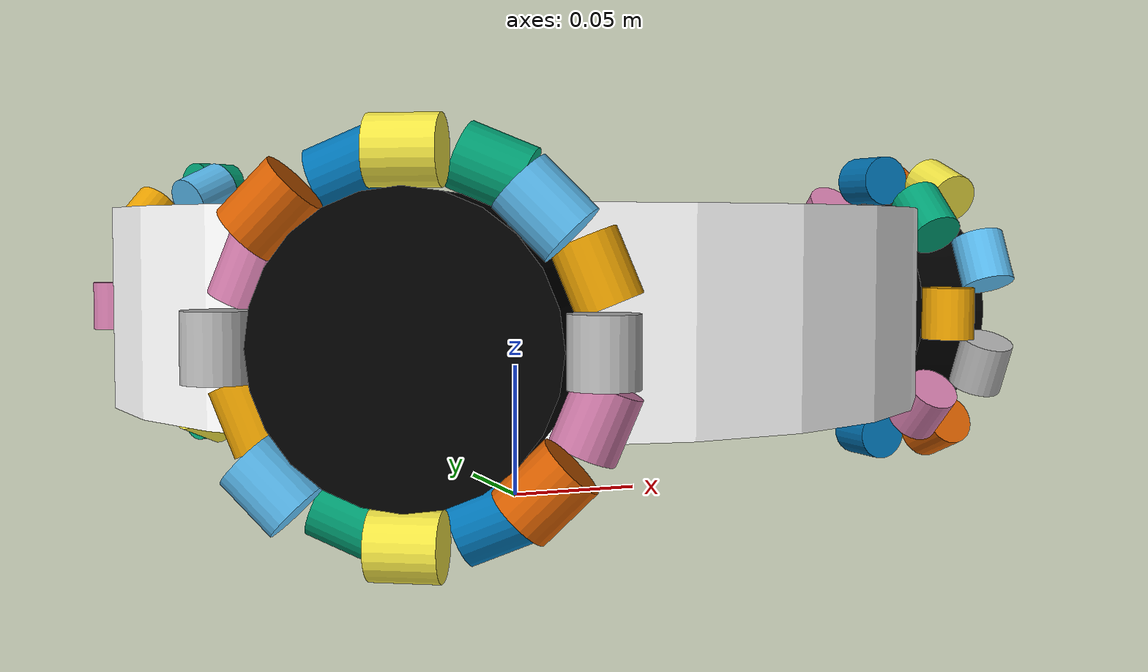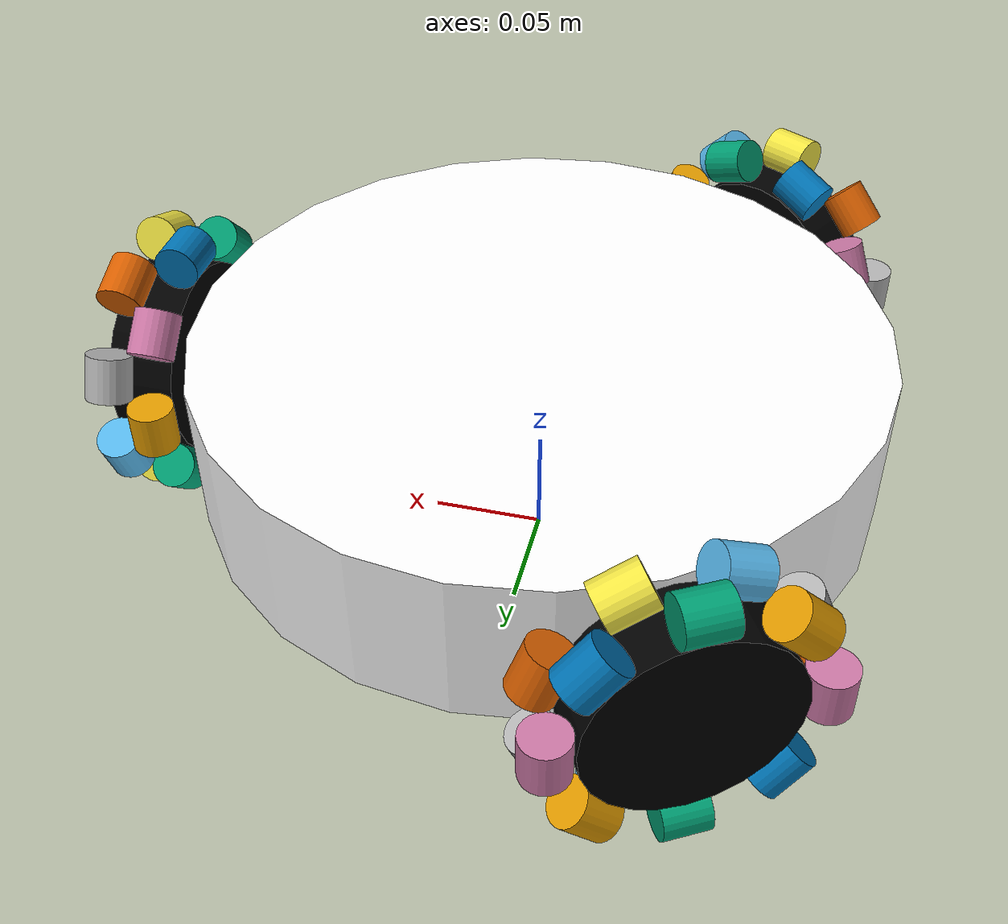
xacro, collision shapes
<?xml version="1.0"?>
<robot name="librarian" xmlns:xacro="http://ros.org/wiki/xacro">

  <xacro:include filename="$(find lib_bringup)/urdf/materials.xacro" />

  <!-- Include Omni Mobile URDF -->
  <xacro:include filename="$(find lib_omni_mobile)/urdf/omni_mobile.urdf.xacro" />

  <!-- Include Planar Arm URDF -->

  <!-- Base fixed joint -->

</robot>

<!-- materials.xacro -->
<robot>
    <material name="blue">
		<color rgba="0 0 1 1"/>
	</material>
	<material name="red">
		<color rgba="1 0 0 1"/>
	</material>
	<material name="green">
		<color rgba="0 1 0 1"/>
	</material>
	<material name="black">
		<color rgba="0 0 0 1"/>
	</material>
	<material name="white">
		<color rgba="1 1 1 1"/>
	</material>
</robot>

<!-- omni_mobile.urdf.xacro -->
<robot name="omni_mobile" xmlns:xacro="http://www.ros.org/wiki/xacro">
	<xacro:include filename="$(find lib_omni_mobile)/urdf/rim_wheel.urdf.xacro"/>
	<xacro:include filename="$(find lib_omni_mobile)/urdf/omni_mobile.gazebo.xacro" />
	<xacro:property name="PI" value="3.14" />
    <xacro:property name="base_link_length" value="0.07" />
    <xacro:property name="base_link_radius" value="0.15" />
	<xacro:property name="wheel_length" value="0.04" />
	<xacro:property name="wheel_radius" value="0.04" />

    <link name="base_link">
		<visual>
			<geometry>
				<cylinder length="${base_link_length}" radius="${base_link_radius}"/>
			</geometry>
			<origin xyz="0 0 ${base_link_length/2+wheel_radius}" rpy="0 0 0"/>
			<material name="white"/>
		</visual>
		<collision>
			<geometry>
				<cylinder length="${base_link_length}" radius="${base_link_radius}"/>
			</geometry>
			<origin xyz="0 0 ${base_link_length/2+wheel_radius}" rpy="0 0 0"/>
			<material name="white"/>
		</collision>
		<inertial>
			<origin xyz="0 0 0" rpy="0 0 0"/>
			<mass value="0.10"/>
			<inertia ixx="0.00092" ixy="0.0" ixz="0.0" iyy="0.00178" iyz="0.0" izz="0.00092"/>
		</inertial>
	</link>

	<xacro:rim name="left_wheel" parent="base_link" xyz="${-0.5*(base_link_radius+wheel_length/2)} ${0.866*(base_link_radius+wheel_length/2)} ${base_link_length}" rpy="0 ${PI/2} ${2*PI/3}"/>
	<xacro:rim name="right_wheel" parent="base_link" xyz="${-0.5*(base_link_radius+wheel_length/2)} ${-0.866*(base_link_radius+wheel_length/2)} ${base_link_length}" rpy="0 ${PI/2} ${-2*PI/3}"/>
	<xacro:rim name="front_wheel" parent="base_link" xyz="${base_link_radius+wheel_length/2} 0 ${base_link_length}" rpy="0 ${PI/2} ${PI}"/>

	<joint name="scan_joint" type="fixed">
		<parent link="base_link"/>
		<child link="base_scan"/>
		<origin xyz="-0.024 0 0.17" rpy="0 0 0"/>
  	</joint>

	<link name="base_scan">
		<visual>
			<origin xyz="0 0 0"/>
			<geometry>
				<mesh filename="package://turtlebot3_description/meshes/sensors/lds.stl" scale="0.001 0.001 0.001"/>
			</geometry>
			<origin xyz="0 0 0" rpy="0 0 0"/>
			<material name="dark"/>
		</visual>
	</link>

</robot>

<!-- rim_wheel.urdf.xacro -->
<robot xmlns:xacro="http://www.ros.org/wiki/xacro">
<xacro:include filename="$(find lib_omni_mobile)/urdf/roller_wheel.urdf.xacro"/>
<xacro:macro name="rim" params="name parent xyz rpy">
    <link name="${name}">
        <inertial>
            <mass value="0.10"/>
            <inertia ixx="7.6e-5" ixy="0.0" ixz="0.0" iyy="7.6e-5" iyz="0.0" izz="0.000125"/>
        </inertial>
        <visual>
            <geometry>
                <cylinder radius="0.0435" length="0.029"/>
            </geometry>
            <material name="black"/>
        </visual>
        <collision>
            <geometry>
                <cylinder radius="0.0435" length="0.029"/>
            </geometry>
            <material name="black"/>
        </collision>
    </link>
    <joint name="joint_${name}" type="continuous">
        <parent link="${parent}"/>
        <child link="${name}"/>
        <axis xyz = "0 0 1"/>
        <origin xyz = "${xyz}" rpy = "${rpy}" />
        <limit effort="1000" velocity="3140"/>
    </joint>

    <xacro:roller name="8" parent="${name}"  xyz="0.053 0 0.0095" rpy="1.57 0 0"/>
	<xacro:roller name="7" parent="${name}"  xyz="0.048966 0.020282 -0.0095" rpy="1.57 0 0.3927"/>
	<xacro:roller name="6" parent="${name}"  xyz="0.037477 0.037477 0.0095" rpy="1.57 0 0.7854"/>
	<xacro:roller name="5" parent="${name}"  xyz="0.020282 0.048966 -0.0095" rpy="1.57 0 1.1781"/>
	<xacro:roller name="4" parent="${name}"  xyz="0 0.053 0.0095" rpy="1.57 0 1.5708"/>
	<xacro:roller name="3" parent="${name}"  xyz="-0.020282 0.048966 -0.0095" rpy="1.57 0 1.9635"/>
	<xacro:roller name="2" parent="${name}"  xyz="-0.037477 0.037477 0.0095" rpy="1.57 0 2.3562"/>
	<xacro:roller name="1" parent="${name}"  xyz="-0.048966 0.020282 -0.0095" rpy="1.57 0 2.7489"/>
	<xacro:roller name="16" parent="${name}" xyz="-0.053 0 0.0095" rpy="1.57 0 3.1416"/>
	<xacro:roller name="15" parent="${name}" xyz="-0.048966 -0.020282 -0.0095" rpy="1.57 0 -2.7489"/>
	<xacro:roller name="14" parent="${name}" xyz="-0.037477 -0.037477 0.0095" rpy="1.57 0 -2.3562"/>
	<xacro:roller name="13" parent="${name}" xyz="-0.020282 -0.048966 -0.0095" rpy="1.57 0 -1.9635"/>
	<xacro:roller name="12" parent="${name}" xyz="0 -0.053 0.0095" rpy="1.57 0 -1.5708"/>
	<xacro:roller name="11" parent="${name}" xyz="0.020282 -0.048966 -0.0095" rpy="1.57 0 -1.1781"/>
	<xacro:roller name="10" parent="${name}" xyz="0.037477 -0.037477 0.0095" rpy="1.57 0 -0.7854"/>
	<xacro:roller name="9" parent="${name}" xyz="0.048966 -0.020282 -0.0095" rpy="1.57 0 -0.3927"/>

    <transmission name="${name}_tran">
        <type>transmission_interface/SimpleTransmission</type>
        <joint name="joint_${name}">
            <hardwareInterface>hardware_interface/EffortJointInterface</hardwareInterface>
        </joint>
        <actuator name="${name}_motor">
            <hardwareInterface>hardware_interface/EffortJointInterface</hardwareInterface>
            <mechanicalReduction>1</mechanicalReduction>
        </actuator>
    </transmission>

</xacro:macro>
</robot>

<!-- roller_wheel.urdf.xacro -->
<robot xmlns:xacro="http://www.ros.org/wiki/xacro">
<xacro:macro name="roller" params="name parent xyz rpy">
    <link name="roller_${name}_${parent}">
        <inertial>
            <inertia ixx="1e-6" ixy="0.0" ixz="0.0" iyy="1e-6" iyz="0.0" izz="1e-7"/>
            <mass value="0.010"/>
        </inertial>
        <visual>
            <geometry>
                <cylinder radius="0.01" length="0.02"/>
            </geometry>
        </visual>
        <collision>
            <geometry>
                <cylinder radius="0.01" length="0.02"/>
            </geometry>
        </collision>
    </link>
    <joint name="roller_${name}_${parent}" type="continuous">
        <parent link="${parent}"/>
        <child link="roller_${name}_${parent}"/>
        <axis xyz="0 0 1"/>
        <origin xyz="${xyz}" rpy="${rpy}"/>
        <limit effort="1000" velocity="31.4"/>
    </joint>
</xacro:macro>
</robot>
